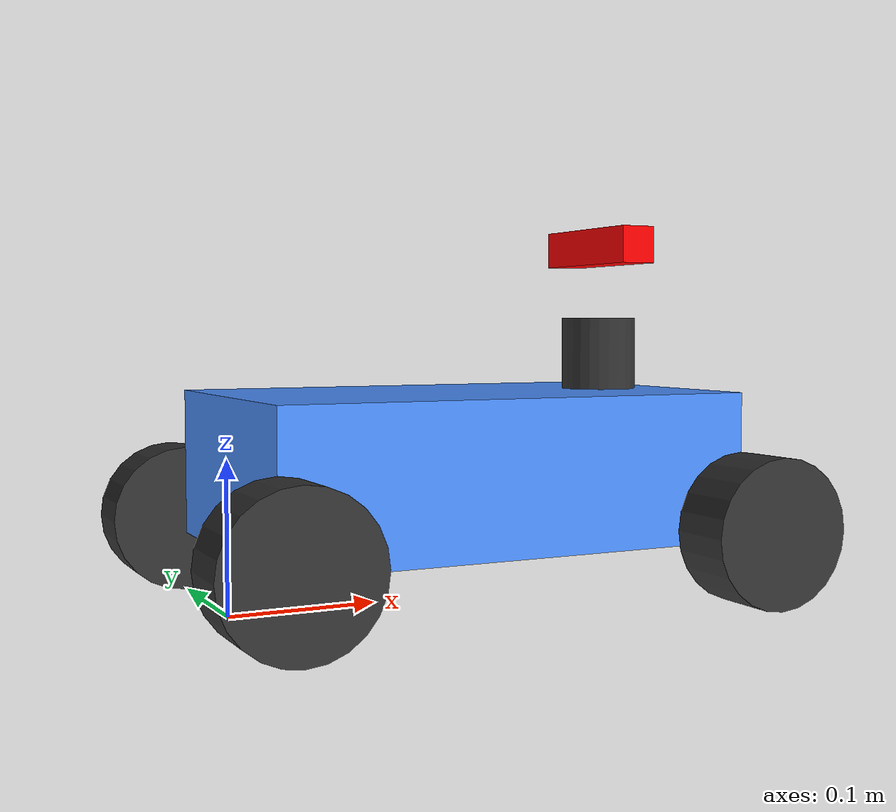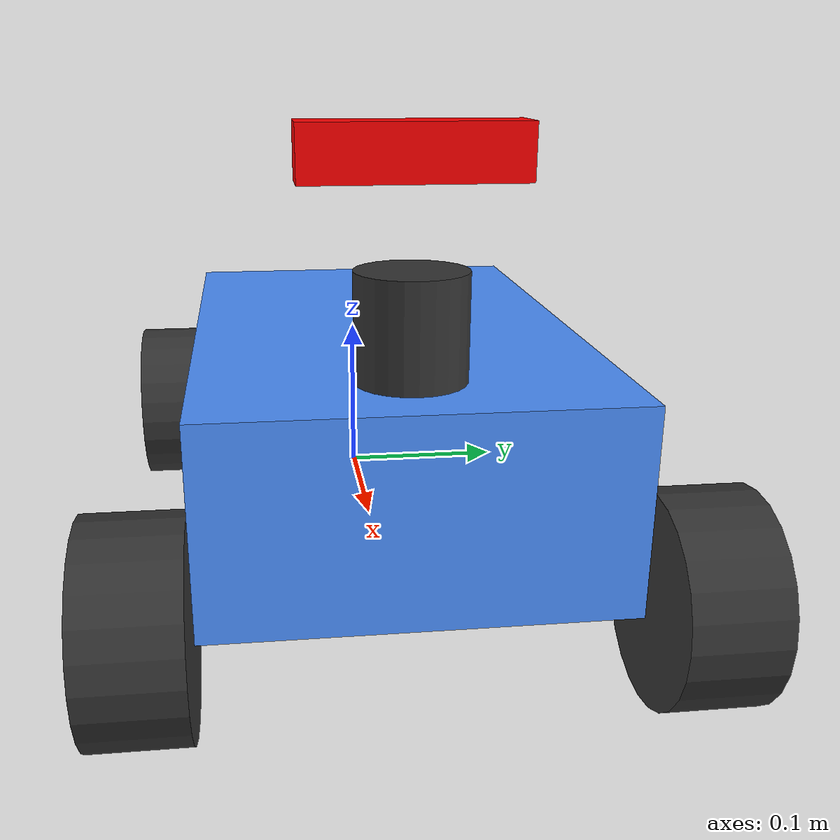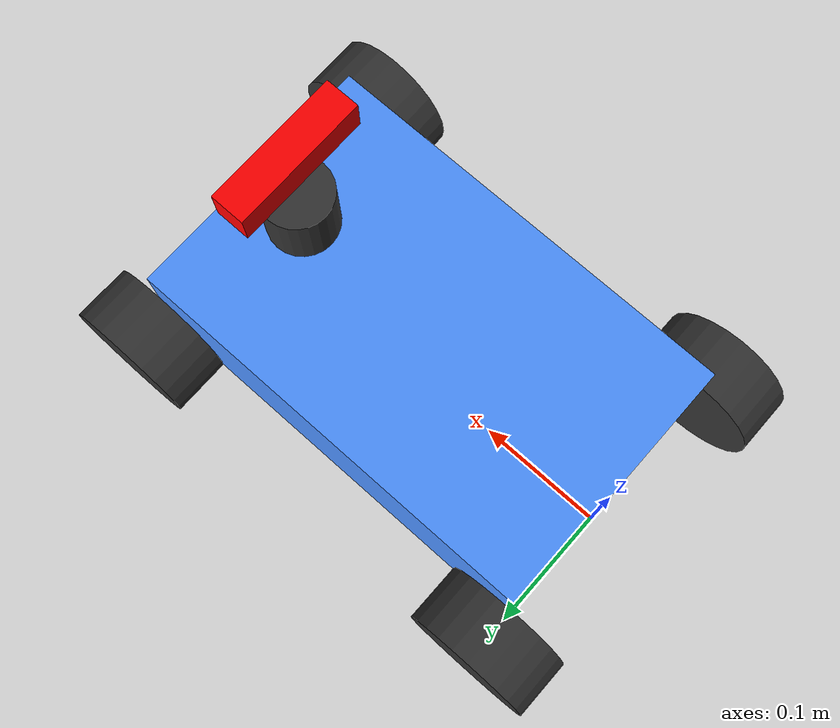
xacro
<?xml version="1.0"?>

<!-- A simple model of the racecar for rviz -->

<robot xmlns:xacro="http://www.ros.org/wiki/xacro" name="racecar">

  <xacro:property name="wheelbase" value="0.325" />
  <xacro:property name="width" value="0.2" />
  <xacro:property name="height" value="0.1" />
  <xacro:property name="ground_offset" value="0.04" />
  <xacro:property name="wheel_radius" value="0.05" />
  <xacro:property name="wheel_length" value="0.045" />
  <xacro:property name="laser_distance_from_base_link" value="0.275" />
  <xacro:property name="laser_height" value="0.05" />
  <xacro:property name="laser_radius" value="0.026" />
  <xacro:property name="camera_distance_from_base_link" value="0.275" />
  <xacro:property name="camera_height" value="0.3" />
  <xacro:property name="camera_thickness" value="0.025"/>
  <xacro:property name="camera_width" value="0.1"/>

  <!-- ZED Camera sensor -->
  <xacro:include filename="./zed.gazebo"/>

  <material name="black">
    <color rgba="0.2 0.2 0.2 1."/>
  </material>

  <material name="blue">
    <color rgba="0.3 0.57 1. 1."/>
  </material>

  <material name="red">
    <color rgba="1. 0. 0. 1."/>
  </material>

  <!-- Chassis -->
  <link name="base_link">
    <visual>
      <origin xyz="${wheelbase/2} 0 ${ground_offset+height/2}"/>
      <geometry>
        <box size="${wheelbase} ${width} ${height}"/>
      </geometry>
      <material name="blue"/>
    </visual>
  </link>

  <!-- Laser -->
  <joint name="base_to_laser_model" type="fixed">
    <parent link="base_link"/>
    <child link="laser_model"/>
    <origin xyz="${laser_distance_from_base_link} 0 ${ground_offset+height+(laser_height/2)}"/>
  </joint>

  <link name="laser_model">
    <visual>
      <geometry>
        <cylinder radius="${laser_radius}" length="${laser_height}"/>
      </geometry>
      <material name="black"/>
    </visual>
  </link>

  <!-- Camera -->
  <joint name="camera_joint" type="fixed">
    <origin xyz="0 0 ${laser_height*0.75}" rpy="0 0 0"/>
    <parent link="laser_model"/>
    <child link="camera_link"/>
  </joint>

  <link name="camera_link">
    <collision>
      <origin xyz="0 0 ${laser_height*0.75}" rpy="0 0 0"/>
      <geometry>
        <box size="${camera_width} ${camera_thickness} ${camera_thickness}"/>
      </geometry>
    </collision>

    <visual>
      <origin xyz="0 0 ${laser_height*0.75}" rpy="0 0 0"/>
      <geometry>
        <box size="${camera_thickness} ${camera_width} ${camera_thickness}"/>
      </geometry>
      <material name="red"/>
    </visual>

    <inertial>
      <mass value="1e-5" />
      <origin xyz="0 0 ${laser_height*0.75}" rpy="0 0 0"/>
      <inertia ixx="1e-6" ixy="0" ixz="0" iyy="1e-6" iyz="0" izz="1e-6" />
    </inertial>

  </link>

  <joint name="camera_optical_joint" type="fixed">
    <origin xyz="0 0.06 0" rpy="${-pi/2} 0 ${-pi/2}"/>
    <parent link="camera_link"/>
    <child link="camera_link_optical"/>
  </joint>

  <link name="camera_link_optical">
  </link>

  <!-- Wheels -->
  <joint name="base_to_back_left_wheel" type="fixed">
    <parent link="base_link"/>
    <child link="back_left_wheel"/>
    <origin xyz="0 ${(wheel_length+width)/2} ${wheel_radius}"/>
  </joint>

  <link name="back_left_wheel">
    <visual>
      <geometry>
        <cylinder radius="${wheel_radius}" length="${wheel_length}"/>
      </geometry>
      <material name="black"/>
      <origin rpy="${pi/2} 0 0"/>
    </visual>
  </link>

  <joint name="base_to_back_right_wheel" type="fixed">
    <parent link="base_link"/>
    <child link="back_right_wheel"/>
    <origin xyz="0 ${-(wheel_length+width)/2} ${wheel_radius}"/>
  </joint>

  <link name="back_right_wheel">
    <visual>
      <geometry>
        <cylinder radius="${wheel_radius}" length="${wheel_length}"/>
      </geometry>
      <material name="black"/>
      <origin rpy="${pi/2} 0 0"/>
    </visual>
  </link>

  <joint name="base_to_front_left_hinge" type="fixed">
    <parent link="base_link"/>
    <child link="front_left_hinge"/>
    <origin xyz="${wheelbase} ${(wheel_length+width)/2} ${wheel_radius}"/>
  </joint>

  <link name="front_left_hinge"/>

  <joint name="front_left_hinge_to_wheel" type="continuous">
    <parent link="front_left_hinge"/>
    <child link="front_left_wheel"/>
  </joint>

  <link name="front_left_wheel">
    <visual>
      <geometry>
        <cylinder radius="${wheel_radius}" length="${wheel_length}"/>
      </geometry>
      <material name="black"/>
      <origin rpy="${pi/2} 0 0"/>
    </visual>
  </link>

  <joint name="base_to_front_right_hinge" type="fixed">
    <parent link="base_link"/>
    <child link="front_right_hinge"/>
    <origin xyz="${wheelbase} ${-(wheel_length+width)/2} ${wheel_radius}"/>
  </joint>

  <link name="front_right_hinge"/>

  <joint name="front_right_hinge_to_wheel" type="continuous">
    <parent link="front_right_hinge"/>
    <child link="front_right_wheel"/>
  </joint>

  <link name="front_right_wheel">
    <visual>
      <geometry>
        <cylinder radius="${wheel_radius}" length="${wheel_length}"/>
      </geometry>
      <material name="black"/>
      <origin rpy="${pi/2} 0 0"/>
    </visual>
  </link>

</robot>
